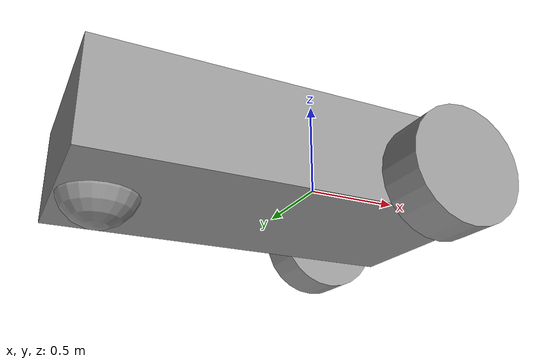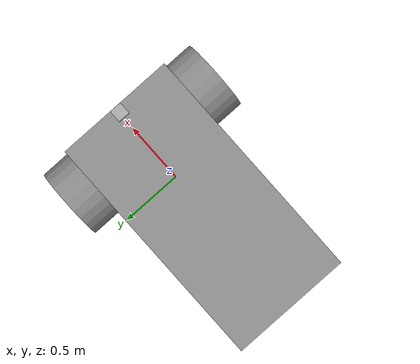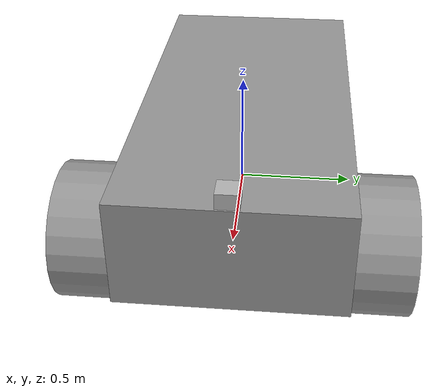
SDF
<?xml version='1.0'?>
<sdf version='1.6'>
  <model name='rosBot'>
    <link name='link_0'>
      <inertial>
        <mass>1</mass>
        <inertia>
          <ixx>0.166667</ixx>
          <ixy>0</ixy>
          <ixz>0</ixz>
          <iyy>0.166667</iyy>
          <iyz>0</iyz>
          <izz>0.166667</izz>
        </inertia>
        <pose frame=''>0 0 0 0 -0 0</pose>
      </inertial>
      <pose frame=''>-0.308516 0.001404 0.035808 0 -0 0</pose>
      <gravity>1</gravity>
      <self_collide>0</self_collide>
      <kinematic>0</kinematic>
      <enable_wind>0</enable_wind>
      <visual name='visual'>
        <pose frame=''>0 0 0 0 -0 0</pose>
        <geometry>
          <box>
            <size>2 1 0.5</size>
          </box>
        </geometry>
        <material>
          <lighting>1</lighting>
          <script>
            <uri>file://media/materials/scripts/gazebo.material</uri>
            <name>Gazebo/Grey</name>
          </script>
          <shader type='vertex'>
            <normal_map>__default__</normal_map>
          </shader>
          <ambient>0.3 0.3 0.3 1</ambient>
          <diffuse>0.7 0.7 0.7 1</diffuse>
          <specular>0.01 0.01 0.01 1</specular>
          <emissive>0 0 0 1</emissive>
        </material>
        <transparency>0</transparency>
        <cast_shadows>1</cast_shadows>
      </visual>
      <collision name='collision'>
        <laser_retro>0</laser_retro>
        <max_contacts>10</max_contacts>
        <pose frame=''>0 0 0 0 -0 0</pose>
        <geometry>
          <box>
            <size>2 1 0.5</size>
          </box>
        </geometry>
        <surface>
          <friction>
            <ode>
              <mu>1</mu>
              <mu2>1</mu2>
              <fdir1>0 0 0</fdir1>
              <slip1>0</slip1>
              <slip2>0</slip2>
            </ode>
            <torsional>
              <coefficient>1</coefficient>
              <patch_radius>0</patch_radius>
              <surface_radius>0</surface_radius>
              <use_patch_radius>1</use_patch_radius>
              <ode>
                <slip>0</slip>
              </ode>
            </torsional>
          </friction>
          <bounce>
            <restitution_coefficient>0</restitution_coefficient>
            <threshold>1e+06</threshold>
          </bounce>
          <contact>
            <collide_without_contact>0</collide_without_contact>
            <collide_without_contact_bitmask>1</collide_without_contact_bitmask>
            <collide_bitmask>1</collide_bitmask>
            <ode>
              <soft_cfm>0</soft_cfm>
              <soft_erp>0.2</soft_erp>
              <kp>1e+13</kp>
              <kd>1</kd>
              <max_vel>0.01</max_vel>
              <min_depth>0</min_depth>
            </ode>
            <bullet>
              <split_impulse>1</split_impulse>
              <split_impulse_penetration_threshold>-0.01</split_impulse_penetration_threshold>
              <soft_cfm>0</soft_cfm>
              <soft_erp>0.2</soft_erp>
              <kp>1e+13</kp>
              <kd>1</kd>
            </bullet>
          </contact>
        </surface>
      </collision>
    </link>
    <link name='link_1'>
      <inertial>
        <mass>1</mass>
        <inertia>
          <ixx>0.145833</ixx>
          <ixy>0</ixy>
          <ixz>0</ixz>
          <iyy>0.145833</iyy>
          <iyz>0</iyz>
          <izz>0.125</izz>
        </inertia>
        <pose frame=''>0 0 0 0 -0 0</pose>
      </inertial>
      <pose frame=''>0.391484 -0.623625 -0.064192 1.5707 -0 0</pose>
      <gravity>1</gravity>
      <self_collide>0</self_collide>
      <kinematic>0</kinematic>
      <enable_wind>0</enable_wind>
      <visual name='visual'>
        <pose frame=''>0 0 0 0 -0 0</pose>
        <geometry>
          <cylinder>
            <radius>0.3</radius>
            <length>0.25</length>
          </cylinder>
        </geometry>
        <material>
          <lighting>1</lighting>
          <script>
            <uri>file://media/materials/scripts/gazebo.material</uri>
            <name>Gazebo/Grey</name>
          </script>
          <shader type='vertex'>
            <normal_map>__default__</normal_map>
          </shader>
          <ambient>0.3 0.3 0.3 1</ambient>
          <diffuse>0.7 0.7 0.7 1</diffuse>
          <specular>0.01 0.01 0.01 1</specular>
          <emissive>0 0 0 1</emissive>
        </material>
        <transparency>0</transparency>
        <cast_shadows>1</cast_shadows>
      </visual>
      <collision name='collision'>
        <laser_retro>0</laser_retro>
        <max_contacts>10</max_contacts>
        <pose frame=''>0 0 0 0 -0 0</pose>
        <geometry>
          <cylinder>
            <radius>0.3</radius>
            <length>0.25</length>
          </cylinder>
        </geometry>
        <surface>
          <friction>
            <ode>
              <mu>1</mu>
              <mu2>1</mu2>
              <fdir1>0 0 0</fdir1>
              <slip1>0</slip1>
              <slip2>0</slip2>
            </ode>
            <torsional>
              <coefficient>1</coefficient>
              <patch_radius>0</patch_radius>
              <surface_radius>0</surface_radius>
              <use_patch_radius>1</use_patch_radius>
              <ode>
                <slip>0</slip>
              </ode>
            </torsional>
          </friction>
          <bounce>
            <restitution_coefficient>0</restitution_coefficient>
            <threshold>1e+06</threshold>
          </bounce>
          <contact>
            <collide_without_contact>0</collide_without_contact>
            <collide_without_contact_bitmask>1</collide_without_contact_bitmask>
            <collide_bitmask>1</collide_bitmask>
            <ode>
              <soft_cfm>0</soft_cfm>
              <soft_erp>0.2</soft_erp>
              <kp>1e+13</kp>
              <kd>1</kd>
              <max_vel>0.01</max_vel>
              <min_depth>0</min_depth>
            </ode>
            <bullet>
              <split_impulse>1</split_impulse>
              <split_impulse_penetration_threshold>-0.01</split_impulse_penetration_threshold>
              <soft_cfm>0</soft_cfm>
              <soft_erp>0.2</soft_erp>
              <kp>1e+13</kp>
              <kd>1</kd>
            </bullet>
          </contact>
        </surface>
      </collision>
    </link>
    <link name='link_1_clone'>
      <inertial>
        <mass>1</mass>
        <inertia>
          <ixx>0.145833</ixx>
          <ixy>0</ixy>
          <ixz>0</ixz>
          <iyy>0.145833</iyy>
          <iyz>0</iyz>
          <izz>0.125</izz>
        </inertia>
        <pose frame=''>0 0 0 0 -0 0</pose>
      </inertial>
      <pose frame=''>0.391484 0.626433 -0.064192 1.5707 -0 0</pose>
      <gravity>1</gravity>
      <self_collide>0</self_collide>
      <kinematic>0</kinematic>
      <enable_wind>0</enable_wind>
      <visual name='visual'>
        <pose frame=''>0 0 0 0 -0 0</pose>
        <geometry>
          <cylinder>
            <radius>0.3</radius>
            <length>0.25</length>
          </cylinder>
        </geometry>
        <material>
          <lighting>1</lighting>
          <script>
            <uri>file://media/materials/scripts/gazebo.material</uri>
            <name>Gazebo/Grey</name>
          </script>
          <shader type='vertex'>
            <normal_map>__default__</normal_map>
          </shader>
          <ambient>0.3 0.3 0.3 1</ambient>
          <diffuse>0.7 0.7 0.7 1</diffuse>
          <specular>0.01 0.01 0.01 1</specular>
          <emissive>0 0 0 1</emissive>
        </material>
        <transparency>0</transparency>
        <cast_shadows>1</cast_shadows>
      </visual>
      <collision name='collision'>
        <laser_retro>0</laser_retro>
        <max_contacts>10</max_contacts>
        <pose frame=''>0 0 0 0 -0 0</pose>
        <geometry>
          <cylinder>
            <radius>0.3</radius>
            <length>0.25</length>
          </cylinder>
        </geometry>
        <surface>
          <friction>
            <ode>
              <mu>1</mu>
              <mu2>1</mu2>
              <fdir1>0 0 0</fdir1>
              <slip1>0</slip1>
              <slip2>0</slip2>
            </ode>
            <torsional>
              <coefficient>1</coefficient>
              <patch_radius>0</patch_radius>
              <surface_radius>0</surface_radius>
              <use_patch_radius>1</use_patch_radius>
              <ode>
                <slip>0</slip>
              </ode>
            </torsional>
          </friction>
          <bounce>
            <restitution_coefficient>0</restitution_coefficient>
            <threshold>1e+06</threshold>
          </bounce>
          <contact>
            <collide_without_contact>0</collide_without_contact>
            <collide_without_contact_bitmask>1</collide_without_contact_bitmask>
            <collide_bitmask>1</collide_bitmask>
            <ode>
              <soft_cfm>0</soft_cfm>
              <soft_erp>0.2</soft_erp>
              <kp>1e+13</kp>
              <kd>1</kd>
              <max_vel>0.01</max_vel>
              <min_depth>0</min_depth>
            </ode>
            <bullet>
              <split_impulse>1</split_impulse>
              <split_impulse_penetration_threshold>-0.01</split_impulse_penetration_threshold>
              <soft_cfm>0</soft_cfm>
              <soft_erp>0.2</soft_erp>
              <kp>1e+13</kp>
              <kd>1</kd>
            </bullet>
          </contact>
        </surface>
      </collision>
    </link>
    <link name='link_2'>
      <inertial>
        <mass>1</mass>
        <inertia>
          <ixx>0.1</ixx>
          <ixy>0</ixy>
          <ixz>0</ixz>
          <iyy>0.1</iyy>
          <iyz>0</iyz>
          <izz>0.1</izz>
        </inertia>
        <pose frame=''>0 0 0 0 -0 0</pose>
      </inertial>
      <pose frame=''>-1.10852 0.001404 -0.164192 0 -0 0</pose>
      <gravity>1</gravity>
      <self_collide>0</self_collide>
      <kinematic>0</kinematic>
      <enable_wind>0</enable_wind>
      <visual name='visual'>
        <pose frame=''>0 0 0 0 -0 0</pose>
        <geometry>
          <sphere>
            <radius>0.2</radius>
          </sphere>
        </geometry>
        <material>
          <lighting>1</lighting>
          <script>
            <uri>file://media/materials/scripts/gazebo.material</uri>
            <name>Gazebo/Grey</name>
          </script>
          <shader type='vertex'>
            <normal_map>__default__</normal_map>
          </shader>
          <ambient>0.3 0.3 0.3 1</ambient>
          <diffuse>0.7 0.7 0.7 1</diffuse>
          <specular>0.01 0.01 0.01 1</specular>
          <emissive>0 0 0 1</emissive>
        </material>
        <transparency>0</transparency>
        <cast_shadows>1</cast_shadows>
      </visual>
      <collision name='collision'>
        <laser_retro>0</laser_retro>
        <max_contacts>10</max_contacts>
        <pose frame=''>0 0 0 0 -0 0</pose>
        <geometry>
          <sphere>
            <radius>0.2</radius>
          </sphere>
        </geometry>
        <surface>
          <friction>
            <ode>
              <mu>1</mu>
              <mu2>1</mu2>
              <fdir1>0 0 0</fdir1>
              <slip1>0</slip1>
              <slip2>0</slip2>
            </ode>
            <torsional>
              <coefficient>1</coefficient>
              <patch_radius>0</patch_radius>
              <surface_radius>0</surface_radius>
              <use_patch_radius>1</use_patch_radius>
              <ode>
                <slip>0</slip>
              </ode>
            </torsional>
          </friction>
          <bounce>
            <restitution_coefficient>0</restitution_coefficient>
            <threshold>1e+06</threshold>
          </bounce>
          <contact>
            <collide_without_contact>0</collide_without_contact>
            <collide_without_contact_bitmask>1</collide_without_contact_bitmask>
            <collide_bitmask>1</collide_bitmask>
            <ode>
              <soft_cfm>0</soft_cfm>
              <soft_erp>0.2</soft_erp>
              <kp>1e+13</kp>
              <kd>1</kd>
              <max_vel>0.01</max_vel>
              <min_depth>0</min_depth>
            </ode>
            <bullet>
              <split_impulse>1</split_impulse>
              <split_impulse_penetration_threshold>-0.01</split_impulse_penetration_threshold>
              <soft_cfm>0</soft_cfm>
              <soft_erp>0.2</soft_erp>
              <kp>1e+13</kp>
              <kd>1</kd>
            </bullet>
          </contact>
        </surface>
      </collision>
    </link>
    <model name='depth_camera'>
      <link name='link'>
        <pose frame=''>0 0 0.05 0 -0 0</pose>
        <inertial>
          <mass>0.1</mass>
          <inertia>
            <ixx>0.000166667</ixx>
            <iyy>0.000166667</iyy>
            <izz>0.000166667</izz>
            <ixy>0</ixy>
            <ixz>0</ixz>
            <iyz>0</iyz>
          </inertia>
        </inertial>
        <collision name='collision'>
          <geometry>
            <box>
              <size>0.1 0.1 0.1</size>
            </box>
          </geometry>
        </collision>
        <visual name='visual'>
          <geometry>
            <box>
              <size>0.1 0.1 0.1</size>
            </box>
          </geometry>
        </visual>
        <sensor name='camera' type='depth'>
          <camera name='__default__'>
            <horizontal_fov>1.047</horizontal_fov>
            <image>
              <width>320</width>
              <height>240</height>
            </image>
            <clip>
              <near>0.1</near>
              <far>100</far>
            </clip>
          </camera>
          <always_on>1</always_on>
          <update_rate>30</update_rate>
          <visualize>1</visualize>
        </sensor>
      </link>
      <pose frame=''>0.634065 -0.005615 0.256769 0 -0 0</pose>
    </model>
    <joint name='link_0_JOINT_0' type='revolute'>
      <parent>link_0</parent>
      <child>link_1_clone</child>
      <pose frame=''>0 0 0 0 -0 0</pose>
      <axis>
        <xyz>0 0 -1</xyz>
        <use_parent_model_frame>0</use_parent_model_frame>
        <limit>
          <lower>-1.79769e+308</lower>
          <upper>1.79769e+308</upper>
          <effort>-1</effort>
          <velocity>-1</velocity>
        </limit>
        <dynamics>
          <spring_reference>0</spring_reference>
          <spring_stiffness>0</spring_stiffness>
          <damping>0</damping>
        </dynamics>
      </axis>
      <physics>
        <ode>
          <limit>
            <cfm>0</cfm>
            <erp>0.2</erp>
          </limit>
          <suspension>
            <cfm>0</cfm>
            <erp>0.2</erp>
          </suspension>
        </ode>
      </physics>
    </joint>
    <joint name='link_0_JOINT_1' type='revolute'>
      <parent>link_0</parent>
      <child>link_1</child>
      <pose frame=''>0 0 0 0 -0 0</pose>
      <axis>
        <xyz>0 0 -1</xyz>
        <use_parent_model_frame>0</use_parent_model_frame>
        <limit>
          <lower>-1.79769e+308</lower>
          <upper>1.79769e+308</upper>
          <effort>-1</effort>
          <velocity>-1</velocity>
        </limit>
        <dynamics>
          <spring_reference>0</spring_reference>
          <spring_stiffness>0</spring_stiffness>
          <damping>0</damping>
        </dynamics>
      </axis>
      <physics>
        <ode>
          <limit>
            <cfm>0</cfm>
            <erp>0.2</erp>
          </limit>
          <suspension>
            <cfm>0</cfm>
            <erp>0.2</erp>
          </suspension>
        </ode>
      </physics>
    </joint>
    <joint name='link_0_JOINT_2' type='ball'>
      <parent>link_0</parent>
      <child>link_2</child>
      <pose frame=''>0 0 0 0 -0 0</pose>
      <physics>
        <ode>
          <limit>
            <cfm>0</cfm>
            <erp>0.2</erp>
          </limit>
          <suspension>
            <cfm>0</cfm>
            <erp>0.2</erp>
          </suspension>
        </ode>
      </physics>
    </joint>
    <joint name='link_0_JOINT_3' type='fixed'>
      <parent>link_0</parent>
      <child>depth_camera::link</child>
      <pose frame=''>0 0 0 0 -0 0</pose>
      <physics>
        <ode>
          <limit>
            <cfm>0</cfm>
            <erp>0.2</erp>
          </limit>
          <suspension>
            <cfm>0</cfm>
            <erp>0.2</erp>
          </suspension>
        </ode>
      </physics>
    </joint>
    <static>0</static>
    <allow_auto_disable>1</allow_auto_disable>
    <plugin name="differential_drive_controller" filename="libgazebo_ros_diff_drive.so">
      <alwaysOn>true</alwaysOn>
      <updateRate>100.0</updateRate>
      <leftJoint>link_0_JOINT_1</leftJoint>
      <rightJoint>link_0_JOINT_0</rightJoint>
      <wheelSeparation>0.5380</wheelSeparation>
      <wheelDiameter>0.2410</wheelDiameter>
      <torque>20</torque>
      <commandTopic>cmd_vel</commandTopic>
      <odometryTopic>odom</odometryTopic>
      <odometryFrame>odom</odometryFrame>
      <robotBaseFrame>base_footprint</robotBaseFrame>
      <broadcastTF>true</broadcastTF>
    </plugin>
  </model>
</sdf>
